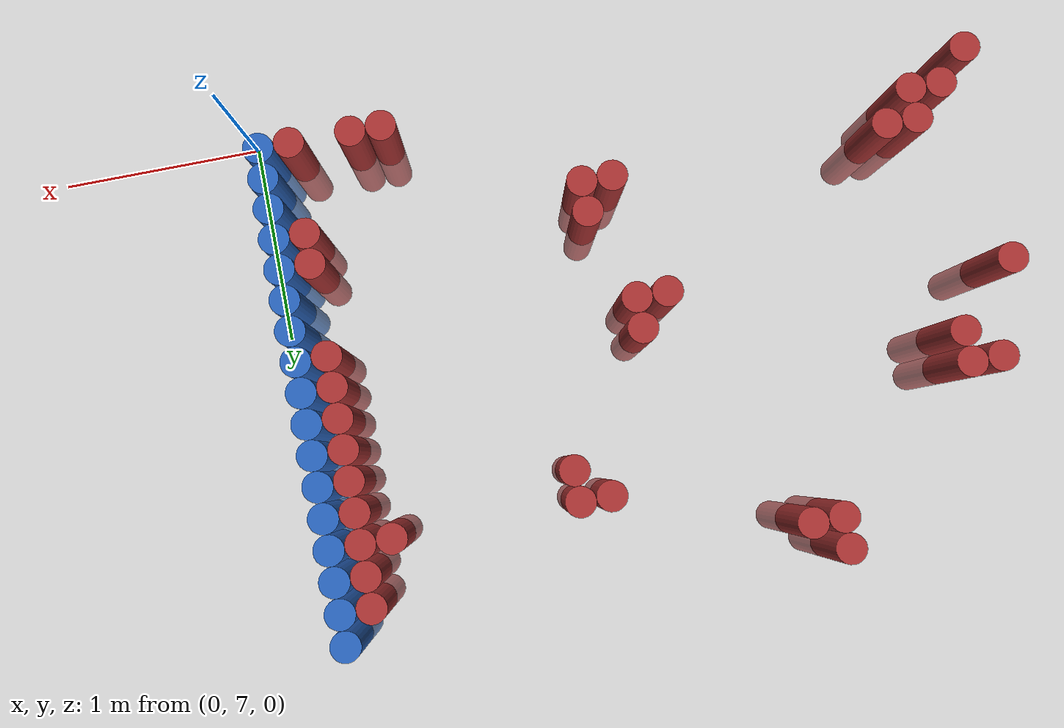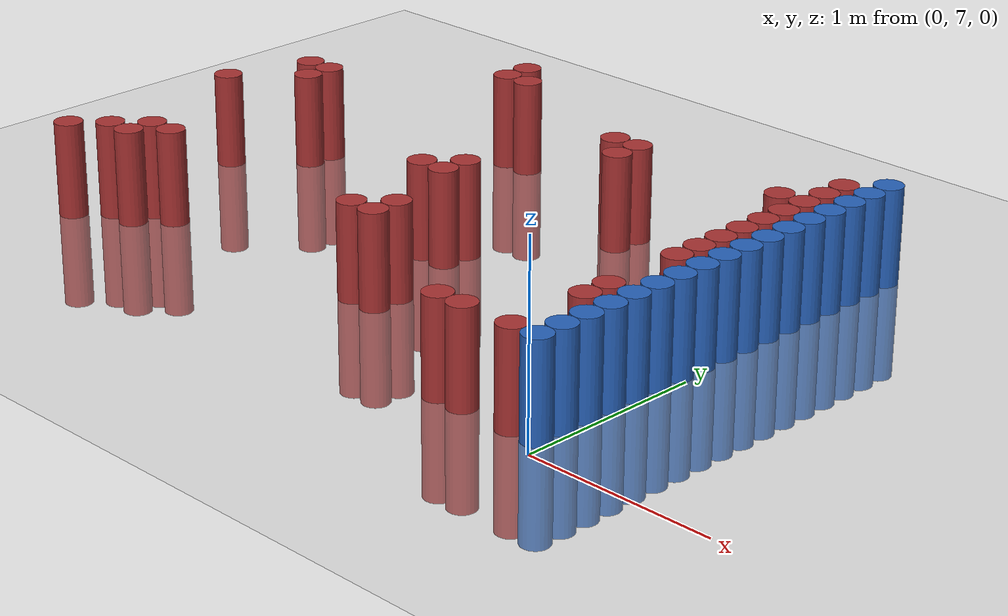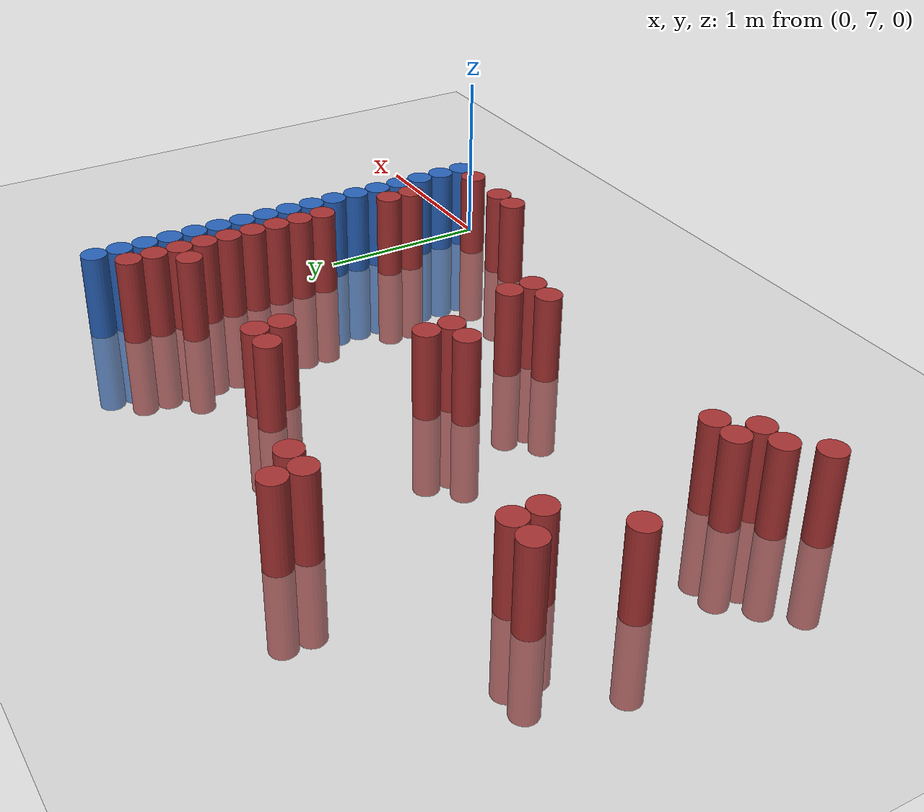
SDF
<sdf version="1.6">
 <world name="default">
  <model name="ground_plane">
   <static>1</static>
   <link name="link">
    <collision name="collision">
     <geometry><plane><normal>0 0 1</normal><size>100 100</size></plane></geometry>
     <surface><friction><ode><mu>100</mu><mu2>50</mu2></ode></friction></surface>
    </collision>
    <visual name="visual">
     <cast_shadows>0</cast_shadows>
     <geometry><plane><normal>0 0 1</normal><size>100 100</size></plane></geometry>
     <material>
      <script><uri>file://media/materials/scripts/gazebo.material</uri><name>Gazebo/Grey</name></script>
     </material>
    </visual>
   </link>
  </model>
  <model name="unit_cylinder_152">
   <static>1</static>
   <pose>-3.525000 7.275000 0.000000 0.000000 0.000000 0.000000</pose>
   <link name="link">
    <inertial>
     <mass>1</mass>
     <inertia><ixx>0.145833</ixx><ixy>0</ixy><ixz>0</ixz><iyy>0.145833</iyy><iyz>0</iyz><izz>0.125</izz></inertia>
    </inertial>
    <collision name="collision">
     <geometry><cylinder><radius>0.075000</radius><length>1</length></cylinder></geometry>
    </collision>
    <visual name="visual">
     <geometry><cylinder><radius>0.075000</radius><length>1</length></cylinder></geometry>
     <material>
      <ambient>0.648000 0.192000 0.192000 1</ambient>
      <diffuse>0.648000 0.192000 0.192000 1</diffuse>
     </material>
     <material>
      <script><name>Gazebo/Grey</name><uri>file://media/materials/scripts/gazebo.material</uri></script>
     </material>
    </visual>
   </link>
  </model>
  <model name="unit_cylinder_153">
   <static>1</static>
   <pose>-3.525000 8.325000 0.000000 0.000000 0.000000 0.000000</pose>
   <link name="link">
    <inertial>
     <mass>1</mass>
     <inertia><ixx>0.145833</ixx><ixy>0</ixy><ixz>0</ixz><iyy>0.145833</iyy><iyz>0</iyz><izz>0.125</izz></inertia>
    </inertial>
    <collision name="collision">
     <geometry><cylinder><radius>0.075000</radius><length>1</length></cylinder></geometry>
    </collision>
    <visual name="visual">
     <geometry><cylinder><radius>0.075000</radius><length>1</length></cylinder></geometry>
     <material>
      <ambient>0.648000 0.192000 0.192000 1</ambient>
      <diffuse>0.648000 0.192000 0.192000 1</diffuse>
     </material>
     <material>
      <script><name>Gazebo/Grey</name><uri>file://media/materials/scripts/gazebo.material</uri></script>
     </material>
    </visual>
   </link>
  </model>
  <model name="unit_cylinder_157">
   <static>1</static>
   <pose>-3.375000 7.425000 0.000000 0.000000 0.000000 0.000000</pose>
   <link name="link">
    <inertial>
     <mass>1</mass>
     <inertia><ixx>0.145833</ixx><ixy>0</ixy><ixz>0</ixz><iyy>0.145833</iyy><iyz>0</iyz><izz>0.125</izz></inertia>
    </inertial>
    <collision name="collision">
     <geometry><cylinder><radius>0.075000</radius><length>1</length></cylinder></geometry>
    </collision>
    <visual name="visual">
     <geometry><cylinder><radius>0.075000</radius><length>1</length></cylinder></geometry>
     <material>
      <ambient>0.648000 0.192000 0.192000 1</ambient>
      <diffuse>0.648000 0.192000 0.192000 1</diffuse>
     </material>
     <material>
      <script><name>Gazebo/Grey</name><uri>file://media/materials/scripts/gazebo.material</uri></script>
     </material>
    </visual>
   </link>
  </model>
  <model name="unit_cylinder_158">
   <static>1</static>
   <pose>-3.375000 8.775000 0.000000 0.000000 0.000000 0.000000</pose>
   <link name="link">
    <inertial>
     <mass>1</mass>
     <inertia><ixx>0.145833</ixx><ixy>0</ixy><ixz>0</ixz><iyy>0.145833</iyy><iyz>0</iyz><izz>0.125</izz></inertia>
    </inertial>
    <collision name="collision">
     <geometry><cylinder><radius>0.075000</radius><length>1</length></cylinder></geometry>
    </collision>
    <visual name="visual">
     <geometry><cylinder><radius>0.075000</radius><length>1</length></cylinder></geometry>
     <material>
      <ambient>0.648000 0.192000 0.192000 1</ambient>
      <diffuse>0.648000 0.192000 0.192000 1</diffuse>
     </material>
     <material>
      <script><name>Gazebo/Grey</name><uri>file://media/materials/scripts/gazebo.material</uri></script>
     </material>
    </visual>
   </link>
  </model>
  <model name="unit_cylinder_161">
   <static>1</static>
   <pose>-3.225000 7.425000 0.000000 0.000000 0.000000 0.000000</pose>
   <link name="link">
    <inertial>
     <mass>1</mass>
     <inertia><ixx>0.145833</ixx><ixy>0</ixy><ixz>0</ixz><iyy>0.145833</iyy><iyz>0</iyz><izz>0.125</izz></inertia>
    </inertial>
    <collision name="collision">
     <geometry><cylinder><radius>0.075000</radius><length>1</length></cylinder></geometry>
    </collision>
    <visual name="visual">
     <geometry><cylinder><radius>0.075000</radius><length>1</length></cylinder></geometry>
     <material>
      <ambient>0.648000 0.192000 0.192000 1</ambient>
      <diffuse>0.648000 0.192000 0.192000 1</diffuse>
     </material>
     <material>
      <script><name>Gazebo/Grey</name><uri>file://media/materials/scripts/gazebo.material</uri></script>
     </material>
    </visual>
   </link>
  </model>
  <model name="unit_cylinder_162">
   <static>1</static>
   <pose>-3.225000 7.575000 0.000000 0.000000 0.000000 0.000000</pose>
   <link name="link">
    <inertial>
     <mass>1</mass>
     <inertia><ixx>0.145833</ixx><ixy>0</ixy><ixz>0</ixz><iyy>0.145833</iyy><iyz>0</iyz><izz>0.125</izz></inertia>
    </inertial>
    <collision name="collision">
     <geometry><cylinder><radius>0.075000</radius><length>1</length></cylinder></geometry>
    </collision>
    <visual name="visual">
     <geometry><cylinder><radius>0.075000</radius><length>1</length></cylinder></geometry>
     <material>
      <ambient>0.648000 0.192000 0.192000 1</ambient>
      <diffuse>0.648000 0.192000 0.192000 1</diffuse>
     </material>
     <material>
      <script><name>Gazebo/Grey</name><uri>file://media/materials/scripts/gazebo.material</uri></script>
     </material>
    </visual>
   </link>
  </model>
  <model name="unit_cylinder_163">
   <static>1</static>
   <pose>-3.225000 8.625000 0.000000 0.000000 0.000000 0.000000</pose>
   <link name="link">
    <inertial>
     <mass>1</mass>
     <inertia><ixx>0.145833</ixx><ixy>0</ixy><ixz>0</ixz><iyy>0.145833</iyy><iyz>0</iyz><izz>0.125</izz></inertia>
    </inertial>
    <collision name="collision">
     <geometry><cylinder><radius>0.075000</radius><length>1</length></cylinder></geometry>
    </collision>
    <visual name="visual">
     <geometry><cylinder><radius>0.075000</radius><length>1</length></cylinder></geometry>
     <material>
      <ambient>0.648000 0.192000 0.192000 1</ambient>
      <diffuse>0.648000 0.192000 0.192000 1</diffuse>
     </material>
     <material>
      <script><name>Gazebo/Grey</name><uri>file://media/materials/scripts/gazebo.material</uri></script>
     </material>
    </visual>
   </link>
  </model>
  <model name="unit_cylinder_164">
   <static>1</static>
   <pose>-3.225000 8.775000 0.000000 0.000000 0.000000 0.000000</pose>
   <link name="link">
    <inertial>
     <mass>1</mass>
     <inertia><ixx>0.145833</ixx><ixy>0</ixy><ixz>0</ixz><iyy>0.145833</iyy><iyz>0</iyz><izz>0.125</izz></inertia>
    </inertial>
    <collision name="collision">
     <geometry><cylinder><radius>0.075000</radius><length>1</length></cylinder></geometry>
    </collision>
    <visual name="visual">
     <geometry><cylinder><radius>0.075000</radius><length>1</length></cylinder></geometry>
     <material>
      <ambient>0.648000 0.192000 0.192000 1</ambient>
      <diffuse>0.648000 0.192000 0.192000 1</diffuse>
     </material>
     <material>
      <script><name>Gazebo/Grey</name><uri>file://media/materials/scripts/gazebo.material</uri></script>
     </material>
    </visual>
   </link>
  </model>
  <model name="unit_cylinder_169">
   <static>1</static>
   <pose>-3.075000 7.575000 0.000000 0.000000 0.000000 0.000000</pose>
   <link name="link">
    <inertial>
     <mass>1</mass>
     <inertia><ixx>0.145833</ixx><ixy>0</ixy><ixz>0</ixz><iyy>0.145833</iyy><iyz>0</iyz><izz>0.125</izz></inertia>
    </inertial>
    <collision name="collision">
     <geometry><cylinder><radius>0.075000</radius><length>1</length></cylinder></geometry>
    </collision>
    <visual name="visual">
     <geometry><cylinder><radius>0.075000</radius><length>1</length></cylinder></geometry>
     <material>
      <ambient>0.648000 0.192000 0.192000 1</ambient>
      <diffuse>0.648000 0.192000 0.192000 1</diffuse>
     </material>
     <material>
      <script><name>Gazebo/Grey</name><uri>file://media/materials/scripts/gazebo.material</uri></script>
     </material>
    </visual>
   </link>
  </model>
  <model name="unit_cylinder_173">
   <static>1</static>
   <pose>-2.475000 9.375000 0.000000 0.000000 0.000000 0.000000</pose>
   <link name="link">
    <inertial>
     <mass>1</mass>
     <inertia><ixx>0.145833</ixx><ixy>0</ixy><ixz>0</ixz><iyy>0.145833</iyy><iyz>0</iyz><izz>0.125</izz></inertia>
    </inertial>
    <collision name="collision">
     <geometry><cylinder><radius>0.075000</radius><length>1</length></cylinder></geometry>
    </collision>
    <visual name="visual">
     <geometry><cylinder><radius>0.075000</radius><length>1</length></cylinder></geometry>
     <material>
      <ambient>0.648000 0.192000 0.192000 1</ambient>
      <diffuse>0.648000 0.192000 0.192000 1</diffuse>
     </material>
     <material>
      <script><name>Gazebo/Grey</name><uri>file://media/materials/scripts/gazebo.material</uri></script>
     </material>
    </visual>
   </link>
  </model>
  <model name="unit_cylinder_174">
   <static>1</static>
   <pose>-2.475000 9.525000 0.000000 0.000000 0.000000 0.000000</pose>
   <link name="link">
    <inertial>
     <mass>1</mass>
     <inertia><ixx>0.145833</ixx><ixy>0</ixy><ixz>0</ixz><iyy>0.145833</iyy><iyz>0</iyz><izz>0.125</izz></inertia>
    </inertial>
    <collision name="collision">
     <geometry><cylinder><radius>0.075000</radius><length>1</length></cylinder></geometry>
    </collision>
    <visual name="visual">
     <geometry><cylinder><radius>0.075000</radius><length>1</length></cylinder></geometry>
     <material>
      <ambient>0.648000 0.192000 0.192000 1</ambient>
      <diffuse>0.648000 0.192000 0.192000 1</diffuse>
     </material>
     <material>
      <script><name>Gazebo/Grey</name><uri>file://media/materials/scripts/gazebo.material</uri></script>
     </material>
    </visual>
   </link>
  </model>
  <model name="unit_cylinder_176">
   <static>1</static>
   <pose>-2.325000 9.375000 0.000000 0.000000 0.000000 0.000000</pose>
   <link name="link">
    <inertial>
     <mass>1</mass>
     <inertia><ixx>0.145833</ixx><ixy>0</ixy><ixz>0</ixz><iyy>0.145833</iyy><iyz>0</iyz><izz>0.125</izz></inertia>
    </inertial>
    <collision name="collision">
     <geometry><cylinder><radius>0.075000</radius><length>1</length></cylinder></geometry>
    </collision>
    <visual name="visual">
     <geometry><cylinder><radius>0.075000</radius><length>1</length></cylinder></geometry>
     <material>
      <ambient>0.648000 0.192000 0.192000 1</ambient>
      <diffuse>0.648000 0.192000 0.192000 1</diffuse>
     </material>
     <material>
      <script><name>Gazebo/Grey</name><uri>file://media/materials/scripts/gazebo.material</uri></script>
     </material>
    </visual>
   </link>
  </model>
  <model name="unit_cylinder_177">
   <static>1</static>
   <pose>-1.875000 8.175000 0.000000 0.000000 0.000000 0.000000</pose>
   <link name="link">
    <inertial>
     <mass>1</mass>
     <inertia><ixx>0.145833</ixx><ixy>0</ixy><ixz>0</ixz><iyy>0.145833</iyy><iyz>0</iyz><izz>0.125</izz></inertia>
    </inertial>
    <collision name="collision">
     <geometry><cylinder><radius>0.075000</radius><length>1</length></cylinder></geometry>
    </collision>
    <visual name="visual">
     <geometry><cylinder><radius>0.075000</radius><length>1</length></cylinder></geometry>
     <material>
      <ambient>0.648000 0.192000 0.192000 1</ambient>
      <diffuse>0.648000 0.192000 0.192000 1</diffuse>
     </material>
     <material>
      <script><name>Gazebo/Grey</name><uri>file://media/materials/scripts/gazebo.material</uri></script>
     </material>
    </visual>
   </link>
  </model>
  <model name="unit_cylinder_180">
   <static>1</static>
   <pose>-1.725000 7.575000 0.000000 0.000000 0.000000 0.000000</pose>
   <link name="link">
    <inertial>
     <mass>1</mass>
     <inertia><ixx>0.145833</ixx><ixy>0</ixy><ixz>0</ixz><iyy>0.145833</iyy><iyz>0</iyz><izz>0.125</izz></inertia>
    </inertial>
    <collision name="collision">
     <geometry><cylinder><radius>0.075000</radius><length>1</length></cylinder></geometry>
    </collision>
    <visual name="visual">
     <geometry><cylinder><radius>0.075000</radius><length>1</length></cylinder></geometry>
     <material>
      <ambient>0.648000 0.192000 0.192000 1</ambient>
      <diffuse>0.648000 0.192000 0.192000 1</diffuse>
     </material>
     <material>
      <script><name>Gazebo/Grey</name><uri>file://media/materials/scripts/gazebo.material</uri></script>
     </material>
    </visual>
   </link>
  </model>
  <model name="unit_cylinder_181">
   <static>1</static>
   <pose>-1.725000 8.175000 0.000000 0.000000 0.000000 0.000000</pose>
   <link name="link">
    <inertial>
     <mass>1</mass>
     <inertia><ixx>0.145833</ixx><ixy>0</ixy><ixz>0</ixz><iyy>0.145833</iyy><iyz>0</iyz><izz>0.125</izz></inertia>
    </inertial>
    <collision name="collision">
     <geometry><cylinder><radius>0.075000</radius><length>1</length></cylinder></geometry>
    </collision>
    <visual name="visual">
     <geometry><cylinder><radius>0.075000</radius><length>1</length></cylinder></geometry>
     <material>
      <ambient>0.648000 0.192000 0.192000 1</ambient>
      <diffuse>0.648000 0.192000 0.192000 1</diffuse>
     </material>
     <material>
      <script><name>Gazebo/Grey</name><uri>file://media/materials/scripts/gazebo.material</uri></script>
     </material>
    </visual>
   </link>
  </model>
  <model name="unit_cylinder_182">
   <static>1</static>
   <pose>-1.725000 8.325000 0.000000 0.000000 0.000000 0.000000</pose>
   <link name="link">
    <inertial>
     <mass>1</mass>
     <inertia><ixx>0.145833</ixx><ixy>0</ixy><ixz>0</ixz><iyy>0.145833</iyy><iyz>0</iyz><izz>0.125</izz></inertia>
    </inertial>
    <collision name="collision">
     <geometry><cylinder><radius>0.075000</radius><length>1</length></cylinder></geometry>
    </collision>
    <visual name="visual">
     <geometry><cylinder><radius>0.075000</radius><length>1</length></cylinder></geometry>
     <material>
      <ambient>0.648000 0.192000 0.192000 1</ambient>
      <diffuse>0.648000 0.192000 0.192000 1</diffuse>
     </material>
     <material>
      <script><name>Gazebo/Grey</name><uri>file://media/materials/scripts/gazebo.material</uri></script>
     </material>
    </visual>
   </link>
  </model>
  <model name="unit_cylinder_190">
   <static>1</static>
   <pose>-1.575000 7.575000 0.000000 0.000000 0.000000 0.000000</pose>
   <link name="link">
    <inertial>
     <mass>1</mass>
     <inertia><ixx>0.145833</ixx><ixy>0</ixy><ixz>0</ixz><iyy>0.145833</iyy><iyz>0</iyz><izz>0.125</izz></inertia>
    </inertial>
    <collision name="collision">
     <geometry><cylinder><radius>0.075000</radius><length>1</length></cylinder></geometry>
    </collision>
    <visual name="visual">
     <geometry><cylinder><radius>0.075000</radius><length>1</length></cylinder></geometry>
     <material>
      <ambient>0.648000 0.192000 0.192000 1</ambient>
      <diffuse>0.648000 0.192000 0.192000 1</diffuse>
     </material>
     <material>
      <script><name>Gazebo/Grey</name><uri>file://media/materials/scripts/gazebo.material</uri></script>
     </material>
    </visual>
   </link>
  </model>
  <model name="unit_cylinder_191">
   <static>1</static>
   <pose>-1.575000 7.725000 0.000000 0.000000 0.000000 0.000000</pose>
   <link name="link">
    <inertial>
     <mass>1</mass>
     <inertia><ixx>0.145833</ixx><ixy>0</ixy><ixz>0</ixz><iyy>0.145833</iyy><iyz>0</iyz><izz>0.125</izz></inertia>
    </inertial>
    <collision name="collision">
     <geometry><cylinder><radius>0.075000</radius><length>1</length></cylinder></geometry>
    </collision>
    <visual name="visual">
     <geometry><cylinder><radius>0.075000</radius><length>1</length></cylinder></geometry>
     <material>
      <ambient>0.648000 0.192000 0.192000 1</ambient>
      <diffuse>0.648000 0.192000 0.192000 1</diffuse>
     </material>
     <material>
      <script><name>Gazebo/Grey</name><uri>file://media/materials/scripts/gazebo.material</uri></script>
     </material>
    </visual>
   </link>
  </model>
  <model name="unit_cylinder_198">
   <static>1</static>
   <pose>-1.425000 9.075000 0.000000 0.000000 0.000000 0.000000</pose>
   <link name="link">
    <inertial>
     <mass>1</mass>
     <inertia><ixx>0.145833</ixx><ixy>0</ixy><ixz>0</ixz><iyy>0.145833</iyy><iyz>0</iyz><izz>0.125</izz></inertia>
    </inertial>
    <collision name="collision">
     <geometry><cylinder><radius>0.075000</radius><length>1</length></cylinder></geometry>
    </collision>
    <visual name="visual">
     <geometry><cylinder><radius>0.075000</radius><length>1</length></cylinder></geometry>
     <material>
      <ambient>0.648000 0.192000 0.192000 1</ambient>
      <diffuse>0.648000 0.192000 0.192000 1</diffuse>
     </material>
     <material>
      <script><name>Gazebo/Grey</name><uri>file://media/materials/scripts/gazebo.material</uri></script>
     </material>
    </visual>
   </link>
  </model>
  <model name="unit_cylinder_200">
   <static>1</static>
   <pose>-1.275000 8.925000 0.000000 0.000000 0.000000 0.000000</pose>
   <link name="link">
    <inertial>
     <mass>1</mass>
     <inertia><ixx>0.145833</ixx><ixy>0</ixy><ixz>0</ixz><iyy>0.145833</iyy><iyz>0</iyz><izz>0.125</izz></inertia>
    </inertial>
    <collision name="collision">
     <geometry><cylinder><radius>0.075000</radius><length>1</length></cylinder></geometry>
    </collision>
    <visual name="visual">
     <geometry><cylinder><radius>0.075000</radius><length>1</length></cylinder></geometry>
     <material>
      <ambient>0.648000 0.192000 0.192000 1</ambient>
      <diffuse>0.648000 0.192000 0.192000 1</diffuse>
     </material>
     <material>
      <script><name>Gazebo/Grey</name><uri>file://media/materials/scripts/gazebo.material</uri></script>
     </material>
    </visual>
   </link>
  </model>
  <model name="unit_cylinder_201">
   <static>1</static>
   <pose>-1.275000 9.075000 0.000000 0.000000 0.000000 0.000000</pose>
   <link name="link">
    <inertial>
     <mass>1</mass>
     <inertia><ixx>0.145833</ixx><ixy>0</ixy><ixz>0</ixz><iyy>0.145833</iyy><iyz>0</iyz><izz>0.125</izz></inertia>
    </inertial>
    <collision name="collision">
     <geometry><cylinder><radius>0.075000</radius><length>1</length></cylinder></geometry>
    </collision>
    <visual name="visual">
     <geometry><cylinder><radius>0.075000</radius><length>1</length></cylinder></geometry>
     <material>
      <ambient>0.648000 0.192000 0.192000 1</ambient>
      <diffuse>0.648000 0.192000 0.192000 1</diffuse>
     </material>
     <material>
      <script><name>Gazebo/Grey</name><uri>file://media/materials/scripts/gazebo.material</uri></script>
     </material>
    </visual>
   </link>
  </model>
  <model name="unit_cylinder_202">
   <static>1</static>
   <pose>-0.675000 7.125000 0.000000 0.000000 0.000000 0.000000</pose>
   <link name="link">
    <inertial>
     <mass>1</mass>
     <inertia><ixx>0.145833</ixx><ixy>0</ixy><ixz>0</ixz><iyy>0.145833</iyy><iyz>0</iyz><izz>0.125</izz></inertia>
    </inertial>
    <collision name="collision">
     <geometry><cylinder><radius>0.075000</radius><length>1</length></cylinder></geometry>
    </collision>
    <visual name="visual">
     <geometry><cylinder><radius>0.075000</radius><length>1</length></cylinder></geometry>
     <material>
      <ambient>0.648000 0.192000 0.192000 1</ambient>
      <diffuse>0.648000 0.192000 0.192000 1</diffuse>
     </material>
     <material>
      <script><name>Gazebo/Grey</name><uri>file://media/materials/scripts/gazebo.material</uri></script>
     </material>
    </visual>
   </link>
  </model>
  <model name="unit_cylinder_204">
   <static>1</static>
   <pose>-0.525000 7.125000 0.000000 0.000000 0.000000 0.000000</pose>
   <link name="link">
    <inertial>
     <mass>1</mass>
     <inertia><ixx>0.145833</ixx><ixy>0</ixy><ixz>0</ixz><iyy>0.145833</iyy><iyz>0</iyz><izz>0.125</izz></inertia>
    </inertial>
    <collision name="collision">
     <geometry><cylinder><radius>0.075000</radius><length>1</length></cylinder></geometry>
    </collision>
    <visual name="visual">
     <geometry><cylinder><radius>0.075000</radius><length>1</length></cylinder></geometry>
     <material>
      <ambient>0.648000 0.192000 0.192000 1</ambient>
      <diffuse>0.648000 0.192000 0.192000 1</diffuse>
     </material>
     <material>
      <script><name>Gazebo/Grey</name><uri>file://media/materials/scripts/gazebo.material</uri></script>
     </material>
    </visual>
   </link>
  </model>
  <model name="unit_cylinder_209">
   <static>1</static>
   <pose>-0.375000 9.075000 0.000000 0.000000 0.000000 0.000000</pose>
   <link name="link">
    <inertial>
     <mass>1</mass>
     <inertia><ixx>0.145833</ixx><ixy>0</ixy><ixz>0</ixz><iyy>0.145833</iyy><iyz>0</iyz><izz>0.125</izz></inertia>
    </inertial>
    <collision name="collision">
     <geometry><cylinder><radius>0.075000</radius><length>1</length></cylinder></geometry>
    </collision>
    <visual name="visual">
     <geometry><cylinder><radius>0.075000</radius><length>1</length></cylinder></geometry>
     <material>
      <ambient>0.648000 0.192000 0.192000 1</ambient>
      <diffuse>0.648000 0.192000 0.192000 1</diffuse>
     </material>
     <material>
      <script><name>Gazebo/Grey</name><uri>file://media/materials/scripts/gazebo.material</uri></script>
     </material>
    </visual>
   </link>
  </model>
  <model name="unit_cylinder_220">
   <static>1</static>
   <pose>-0.225000 7.125000 0.000000 0.000000 0.000000 0.000000</pose>
   <link name="link">
    <inertial>
     <mass>1</mass>
     <inertia><ixx>0.145833</ixx><ixy>0</ixy><ixz>0</ixz><iyy>0.145833</iyy><iyz>0</iyz><izz>0.125</izz></inertia>
    </inertial>
    <collision name="collision">
     <geometry><cylinder><radius>0.075000</radius><length>1</length></cylinder></geometry>
    </collision>
    <visual name="visual">
     <geometry><cylinder><radius>0.075000</radius><length>1</length></cylinder></geometry>
     <material>
      <ambient>0.648000 0.192000 0.192000 1</ambient>
      <diffuse>0.648000 0.192000 0.192000 1</diffuse>
     </material>
     <material>
      <script><name>Gazebo/Grey</name><uri>file://media/materials/scripts/gazebo.material</uri></script>
     </material>
    </visual>
   </link>
  </model>
  <model name="unit_cylinder_221">
   <static>1</static>
   <pose>-0.225000 7.575000 0.000000 0.000000 0.000000 0.000000</pose>
   <link name="link">
    <inertial>
     <mass>1</mass>
     <inertia><ixx>0.145833</ixx><ixy>0</ixy><ixz>0</ixz><iyy>0.145833</iyy><iyz>0</iyz><izz>0.125</izz></inertia>
    </inertial>
    <collision name="collision">
     <geometry><cylinder><radius>0.075000</radius><length>1</length></cylinder></geometry>
    </collision>
    <visual name="visual">
     <geometry><cylinder><radius>0.075000</radius><length>1</length></cylinder></geometry>
     <material>
      <ambient>0.648000 0.192000 0.192000 1</ambient>
      <diffuse>0.648000 0.192000 0.192000 1</diffuse>
     </material>
     <material>
      <script><name>Gazebo/Grey</name><uri>file://media/materials/scripts/gazebo.material</uri></script>
     </material>
    </visual>
   </link>
  </model>
  <model name="unit_cylinder_222">
   <static>1</static>
   <pose>-0.225000 7.725000 0.000000 0.000000 0.000000 0.000000</pose>
   <link name="link">
    <inertial>
     <mass>1</mass>
     <inertia><ixx>0.145833</ixx><ixy>0</ixy><ixz>0</ixz><iyy>0.145833</iyy><iyz>0</iyz><izz>0.125</izz></inertia>
    </inertial>
    <collision name="collision">
     <geometry><cylinder><radius>0.075000</radius><length>1</length></cylinder></geometry>
    </collision>
    <visual name="visual">
     <geometry><cylinder><radius>0.075000</radius><length>1</length></cylinder></geometry>
     <material>
      <ambient>0.648000 0.192000 0.192000 1</ambient>
      <diffuse>0.648000 0.192000 0.192000 1</diffuse>
     </material>
     <material>
      <script><name>Gazebo/Grey</name><uri>file://media/materials/scripts/gazebo.material</uri></script>
     </material>
    </visual>
   </link>
  </model>
  <model name="unit_cylinder_223">
   <static>1</static>
   <pose>-0.225000 8.175000 0.000000 0.000000 0.000000 0.000000</pose>
   <link name="link">
    <inertial>
     <mass>1</mass>
     <inertia><ixx>0.145833</ixx><ixy>0</ixy><ixz>0</ixz><iyy>0.145833</iyy><iyz>0</iyz><izz>0.125</izz></inertia>
    </inertial>
    <collision name="collision">
     <geometry><cylinder><radius>0.075000</radius><length>1</length></cylinder></geometry>
    </collision>
    <visual name="visual">
     <geometry><cylinder><radius>0.075000</radius><length>1</length></cylinder></geometry>
     <material>
      <ambient>0.648000 0.192000 0.192000 1</ambient>
      <diffuse>0.648000 0.192000 0.192000 1</diffuse>
     </material>
     <material>
      <script><name>Gazebo/Grey</name><uri>file://media/materials/scripts/gazebo.material</uri></script>
     </material>
    </visual>
   </link>
  </model>
  <model name="unit_cylinder_224">
   <static>1</static>
   <pose>-0.225000 8.325000 0.000000 0.000000 0.000000 0.000000</pose>
   <link name="link">
    <inertial>
     <mass>1</mass>
     <inertia><ixx>0.145833</ixx><ixy>0</ixy><ixz>0</ixz><iyy>0.145833</iyy><iyz>0</iyz><izz>0.125</izz></inertia>
    </inertial>
    <collision name="collision">
     <geometry><cylinder><radius>0.075000</radius><length>1</length></cylinder></geometry>
    </collision>
    <visual name="visual">
     <geometry><cylinder><radius>0.075000</radius><length>1</length></cylinder></geometry>
     <material>
      <ambient>0.648000 0.192000 0.192000 1</ambient>
      <diffuse>0.648000 0.192000 0.192000 1</diffuse>
     </material>
     <material>
      <script><name>Gazebo/Grey</name><uri>file://media/materials/scripts/gazebo.material</uri></script>
     </material>
    </visual>
   </link>
  </model>
  <model name="unit_cylinder_225">
   <static>1</static>
   <pose>-0.225000 8.475000 0.000000 0.000000 0.000000 0.000000</pose>
   <link name="link">
    <inertial>
     <mass>1</mass>
     <inertia><ixx>0.145833</ixx><ixy>0</ixy><ixz>0</ixz><iyy>0.145833</iyy><iyz>0</iyz><izz>0.125</izz></inertia>
    </inertial>
    <collision name="collision">
     <geometry><cylinder><radius>0.075000</radius><length>1</length></cylinder></geometry>
    </collision>
    <visual name="visual">
     <geometry><cylinder><radius>0.075000</radius><length>1</length></cylinder></geometry>
     <material>
      <ambient>0.648000 0.192000 0.192000 1</ambient>
      <diffuse>0.648000 0.192000 0.192000 1</diffuse>
     </material>
     <material>
      <script><name>Gazebo/Grey</name><uri>file://media/materials/scripts/gazebo.material</uri></script>
     </material>
    </visual>
   </link>
  </model>
  <model name="unit_cylinder_226">
   <static>1</static>
   <pose>-0.225000 8.625000 0.000000 0.000000 0.000000 0.000000</pose>
   <link name="link">
    <inertial>
     <mass>1</mass>
     <inertia><ixx>0.145833</ixx><ixy>0</ixy><ixz>0</ixz><iyy>0.145833</iyy><iyz>0</iyz><izz>0.125</izz></inertia>
    </inertial>
    <collision name="collision">
     <geometry><cylinder><radius>0.075000</radius><length>1</length></cylinder></geometry>
    </collision>
    <visual name="visual">
     <geometry><cylinder><radius>0.075000</radius><length>1</length></cylinder></geometry>
     <material>
      <ambient>0.648000 0.192000 0.192000 1</ambient>
      <diffuse>0.648000 0.192000 0.192000 1</diffuse>
     </material>
     <material>
      <script><name>Gazebo/Grey</name><uri>file://media/materials/scripts/gazebo.material</uri></script>
     </material>
    </visual>
   </link>
  </model>
  <model name="unit_cylinder_227">
   <static>1</static>
   <pose>-0.225000 8.775000 0.000000 0.000000 0.000000 0.000000</pose>
   <link name="link">
    <inertial>
     <mass>1</mass>
     <inertia><ixx>0.145833</ixx><ixy>0</ixy><ixz>0</ixz><iyy>0.145833</iyy><iyz>0</iyz><izz>0.125</izz></inertia>
    </inertial>
    <collision name="collision">
     <geometry><cylinder><radius>0.075000</radius><length>1</length></cylinder></geometry>
    </collision>
    <visual name="visual">
     <geometry><cylinder><radius>0.075000</radius><length>1</length></cylinder></geometry>
     <material>
      <ambient>0.648000 0.192000 0.192000 1</ambient>
      <diffuse>0.648000 0.192000 0.192000 1</diffuse>
     </material>
     <material>
      <script><name>Gazebo/Grey</name><uri>file://media/materials/scripts/gazebo.material</uri></script>
     </material>
    </visual>
   </link>
  </model>
  <model name="unit_cylinder_228">
   <static>1</static>
   <pose>-0.225000 8.925000 0.000000 0.000000 0.000000 0.000000</pose>
   <link name="link">
    <inertial>
     <mass>1</mass>
     <inertia><ixx>0.145833</ixx><ixy>0</ixy><ixz>0</ixz><iyy>0.145833</iyy><iyz>0</iyz><izz>0.125</izz></inertia>
    </inertial>
    <collision name="collision">
     <geometry><cylinder><radius>0.075000</radius><length>1</length></cylinder></geometry>
    </collision>
    <visual name="visual">
     <geometry><cylinder><radius>0.075000</radius><length>1</length></cylinder></geometry>
     <material>
      <ambient>0.648000 0.192000 0.192000 1</ambient>
      <diffuse>0.648000 0.192000 0.192000 1</diffuse>
     </material>
     <material>
      <script><name>Gazebo/Grey</name><uri>file://media/materials/scripts/gazebo.material</uri></script>
     </material>
    </visual>
   </link>
  </model>
  <model name="unit_cylinder_229">
   <static>1</static>
   <pose>-0.225000 9.075000 0.000000 0.000000 0.000000 0.000000</pose>
   <link name="link">
    <inertial>
     <mass>1</mass>
     <inertia><ixx>0.145833</ixx><ixy>0</ixy><ixz>0</ixz><iyy>0.145833</iyy><iyz>0</iyz><izz>0.125</izz></inertia>
    </inertial>
    <collision name="collision">
     <geometry><cylinder><radius>0.075000</radius><length>1</length></cylinder></geometry>
    </collision>
    <visual name="visual">
     <geometry><cylinder><radius>0.075000</radius><length>1</length></cylinder></geometry>
     <material>
      <ambient>0.648000 0.192000 0.192000 1</ambient>
      <diffuse>0.648000 0.192000 0.192000 1</diffuse>
     </material>
     <material>
      <script><name>Gazebo/Grey</name><uri>file://media/materials/scripts/gazebo.material</uri></script>
     </material>
    </visual>
   </link>
  </model>
  <model name="unit_cylinder_230">
   <static>1</static>
   <pose>-0.225000 9.225000 0.000000 0.000000 0.000000 0.000000</pose>
   <link name="link">
    <inertial>
     <mass>1</mass>
     <inertia><ixx>0.145833</ixx><ixy>0</ixy><ixz>0</ixz><iyy>0.145833</iyy><iyz>0</iyz><izz>0.125</izz></inertia>
    </inertial>
    <collision name="collision">
     <geometry><cylinder><radius>0.075000</radius><length>1</length></cylinder></geometry>
    </collision>
    <visual name="visual">
     <geometry><cylinder><radius>0.075000</radius><length>1</length></cylinder></geometry>
     <material>
      <ambient>0.648000 0.192000 0.192000 1</ambient>
      <diffuse>0.648000 0.192000 0.192000 1</diffuse>
     </material>
     <material>
      <script><name>Gazebo/Grey</name><uri>file://media/materials/scripts/gazebo.material</uri></script>
     </material>
    </visual>
   </link>
  </model>
  <model name="unit_cylinder_231">
   <static>1</static>
   <pose>-0.225000 9.375000 0.000000 0.000000 0.000000 0.000000</pose>
   <link name="link">
    <inertial>
     <mass>1</mass>
     <inertia><ixx>0.145833</ixx><ixy>0</ixy><ixz>0</ixz><iyy>0.145833</iyy><iyz>0</iyz><izz>0.125</izz></inertia>
    </inertial>
    <collision name="collision">
     <geometry><cylinder><radius>0.075000</radius><length>1</length></cylinder></geometry>
    </collision>
    <visual name="visual">
     <geometry><cylinder><radius>0.075000</radius><length>1</length></cylinder></geometry>
     <material>
      <ambient>0.648000 0.192000 0.192000 1</ambient>
      <diffuse>0.648000 0.192000 0.192000 1</diffuse>
     </material>
     <material>
      <script><name>Gazebo/Grey</name><uri>file://media/materials/scripts/gazebo.material</uri></script>
     </material>
    </visual>
   </link>
  </model>
  <model name="unit_cylinder_245">
   <static>1</static>
   <pose>-0.075000 7.125000 0.000000 0.000000 0.000000 0.000000</pose>
   <link name="link">
    <inertial>
     <mass>1</mass>
     <inertia><ixx>0.145833</ixx><ixy>0</ixy><ixz>0</ixz><iyy>0.145833</iyy><iyz>0</iyz><izz>0.125</izz></inertia>
    </inertial>
    <collision name="collision">
     <geometry><cylinder><radius>0.075000</radius><length>1</length></cylinder></geometry>
    </collision>
    <visual name="visual">
     <geometry><cylinder><radius>0.075000</radius><length>1</length></cylinder></geometry>
     <material>
      <ambient>0.152000 0.379000 0.720000 1</ambient>
      <diffuse>0.152000 0.379000 0.720000 1</diffuse>
     </material>
     <material>
      <script><name>Gazebo/Grey</name><uri>file://media/materials/scripts/gazebo.material</uri></script>
     </material>
    </visual>
   </link>
  </model>
  <model name="unit_cylinder_246">
   <static>1</static>
   <pose>-0.075000 7.275000 0.000000 0.000000 0.000000 0.000000</pose>
   <link name="link">
    <inertial>
     <mass>1</mass>
     <inertia><ixx>0.145833</ixx><ixy>0</ixy><ixz>0</ixz><iyy>0.145833</iyy><iyz>0</iyz><izz>0.125</izz></inertia>
    </inertial>
    <collision name="collision">
     <geometry><cylinder><radius>0.075000</radius><length>1</length></cylinder></geometry>
    </collision>
    <visual name="visual">
     <geometry><cylinder><radius>0.075000</radius><length>1</length></cylinder></geometry>
     <material>
      <ambient>0.152000 0.379000 0.720000 1</ambient>
      <diffuse>0.152000 0.379000 0.720000 1</diffuse>
     </material>
     <material>
      <script><name>Gazebo/Grey</name><uri>file://media/materials/scripts/gazebo.material</uri></script>
     </material>
    </visual>
   </link>
  </model>
  <model name="unit_cylinder_247">
   <static>1</static>
   <pose>-0.075000 7.425000 0.000000 0.000000 0.000000 0.000000</pose>
   <link name="link">
    <inertial>
     <mass>1</mass>
     <inertia><ixx>0.145833</ixx><ixy>0</ixy><ixz>0</ixz><iyy>0.145833</iyy><iyz>0</iyz><izz>0.125</izz></inertia>
    </inertial>
    <collision name="collision">
     <geometry><cylinder><radius>0.075000</radius><length>1</length></cylinder></geometry>
    </collision>
    <visual name="visual">
     <geometry><cylinder><radius>0.075000</radius><length>1</length></cylinder></geometry>
     <material>
      <ambient>0.152000 0.379000 0.720000 1</ambient>
      <diffuse>0.152000 0.379000 0.720000 1</diffuse>
     </material>
     <material>
      <script><name>Gazebo/Grey</name><uri>file://media/materials/scripts/gazebo.material</uri></script>
     </material>
    </visual>
   </link>
  </model>
  <model name="unit_cylinder_248">
   <static>1</static>
   <pose>-0.075000 7.575000 0.000000 0.000000 0.000000 0.000000</pose>
   <link name="link">
    <inertial>
     <mass>1</mass>
     <inertia><ixx>0.145833</ixx><ixy>0</ixy><ixz>0</ixz><iyy>0.145833</iyy><iyz>0</iyz><izz>0.125</izz></inertia>
    </inertial>
    <collision name="collision">
     <geometry><cylinder><radius>0.075000</radius><length>1</length></cylinder></geometry>
    </collision>
    <visual name="visual">
     <geometry><cylinder><radius>0.075000</radius><length>1</length></cylinder></geometry>
     <material>
      <ambient>0.152000 0.379000 0.720000 1</ambient>
      <diffuse>0.152000 0.379000 0.720000 1</diffuse>
     </material>
     <material>
      <script><name>Gazebo/Grey</name><uri>file://media/materials/scripts/gazebo.material</uri></script>
     </material>
    </visual>
   </link>
  </model>
  <model name="unit_cylinder_249">
   <static>1</static>
   <pose>-0.075000 7.725000 0.000000 0.000000 0.000000 0.000000</pose>
   <link name="link">
    <inertial>
     <mass>1</mass>
     <inertia><ixx>0.145833</ixx><ixy>0</ixy><ixz>0</ixz><iyy>0.145833</iyy><iyz>0</iyz><izz>0.125</izz></inertia>
    </inertial>
    <collision name="collision">
     <geometry><cylinder><radius>0.075000</radius><length>1</length></cylinder></geometry>
    </collision>
    <visual name="visual">
     <geometry><cylinder><radius>0.075000</radius><length>1</length></cylinder></geometry>
     <material>
      <ambient>0.152000 0.379000 0.720000 1</ambient>
      <diffuse>0.152000 0.379000 0.720000 1</diffuse>
     </material>
     <material>
      <script><name>Gazebo/Grey</name><uri>file://media/materials/scripts/gazebo.material</uri></script>
     </material>
    </visual>
   </link>
  </model>
  <model name="unit_cylinder_250">
   <static>1</static>
   <pose>-0.075000 7.875000 0.000000 0.000000 0.000000 0.000000</pose>
   <link name="link">
    <inertial>
     <mass>1</mass>
     <inertia><ixx>0.145833</ixx><ixy>0</ixy><ixz>0</ixz><iyy>0.145833</iyy><iyz>0</iyz><izz>0.125</izz></inertia>
    </inertial>
    <collision name="collision">
     <geometry><cylinder><radius>0.075000</radius><length>1</length></cylinder></geometry>
    </collision>
    <visual name="visual">
     <geometry><cylinder><radius>0.075000</radius><length>1</length></cylinder></geometry>
     <material>
      <ambient>0.152000 0.379000 0.720000 1</ambient>
      <diffuse>0.152000 0.379000 0.720000 1</diffuse>
     </material>
     <material>
      <script><name>Gazebo/Grey</name><uri>file://media/materials/scripts/gazebo.material</uri></script>
     </material>
    </visual>
   </link>
  </model>
  <model name="unit_cylinder_251">
   <static>1</static>
   <pose>-0.075000 8.025000 0.000000 0.000000 0.000000 0.000000</pose>
   <link name="link">
    <inertial>
     <mass>1</mass>
     <inertia><ixx>0.145833</ixx><ixy>0</ixy><ixz>0</ixz><iyy>0.145833</iyy><iyz>0</iyz><izz>0.125</izz></inertia>
    </inertial>
    <collision name="collision">
     <geometry><cylinder><radius>0.075000</radius><length>1</length></cylinder></geometry>
    </collision>
    <visual name="visual">
     <geometry><cylinder><radius>0.075000</radius><length>1</length></cylinder></geometry>
     <material>
      <ambient>0.152000 0.379000 0.720000 1</ambient>
      <diffuse>0.152000 0.379000 0.720000 1</diffuse>
     </material>
     <material>
      <script><name>Gazebo/Grey</name><uri>file://media/materials/scripts/gazebo.material</uri></script>
     </material>
    </visual>
   </link>
  </model>
  <model name="unit_cylinder_252">
   <static>1</static>
   <pose>-0.075000 8.175000 0.000000 0.000000 0.000000 0.000000</pose>
   <link name="link">
    <inertial>
     <mass>1</mass>
     <inertia><ixx>0.145833</ixx><ixy>0</ixy><ixz>0</ixz><iyy>0.145833</iyy><iyz>0</iyz><izz>0.125</izz></inertia>
    </inertial>
    <collision name="collision">
     <geometry><cylinder><radius>0.075000</radius><length>1</length></cylinder></geometry>
    </collision>
    <visual name="visual">
     <geometry><cylinder><radius>0.075000</radius><length>1</length></cylinder></geometry>
     <material>
      <ambient>0.152000 0.379000 0.720000 1</ambient>
      <diffuse>0.152000 0.379000 0.720000 1</diffuse>
     </material>
     <material>
      <script><name>Gazebo/Grey</name><uri>file://media/materials/scripts/gazebo.material</uri></script>
     </material>
    </visual>
   </link>
  </model>
  <model name="unit_cylinder_253">
   <static>1</static>
   <pose>-0.075000 8.325000 0.000000 0.000000 0.000000 0.000000</pose>
   <link name="link">
    <inertial>
     <mass>1</mass>
     <inertia><ixx>0.145833</ixx><ixy>0</ixy><ixz>0</ixz><iyy>0.145833</iyy><iyz>0</iyz><izz>0.125</izz></inertia>
    </inertial>
    <collision name="collision">
     <geometry><cylinder><radius>0.075000</radius><length>1</length></cylinder></geometry>
    </collision>
    <visual name="visual">
     <geometry><cylinder><radius>0.075000</radius><length>1</length></cylinder></geometry>
     <material>
      <ambient>0.152000 0.379000 0.720000 1</ambient>
      <diffuse>0.152000 0.379000 0.720000 1</diffuse>
     </material>
     <material>
      <script><name>Gazebo/Grey</name><uri>file://media/materials/scripts/gazebo.material</uri></script>
     </material>
    </visual>
   </link>
  </model>
  <model name="unit_cylinder_254">
   <static>1</static>
   <pose>-0.075000 8.475000 0.000000 0.000000 0.000000 0.000000</pose>
   <link name="link">
    <inertial>
     <mass>1</mass>
     <inertia><ixx>0.145833</ixx><ixy>0</ixy><ixz>0</ixz><iyy>0.145833</iyy><iyz>0</iyz><izz>0.125</izz></inertia>
    </inertial>
    <collision name="collision">
     <geometry><cylinder><radius>0.075000</radius><length>1</length></cylinder></geometry>
    </collision>
    <visual name="visual">
     <geometry><cylinder><radius>0.075000</radius><length>1</length></cylinder></geometry>
     <material>
      <ambient>0.152000 0.379000 0.720000 1</ambient>
      <diffuse>0.152000 0.379000 0.720000 1</diffuse>
     </material>
     <material>
      <script><name>Gazebo/Grey</name><uri>file://media/materials/scripts/gazebo.material</uri></script>
     </material>
    </visual>
   </link>
  </model>
  <model name="unit_cylinder_255">
   <static>1</static>
   <pose>-0.075000 8.625000 0.000000 0.000000 0.000000 0.000000</pose>
   <link name="link">
    <inertial>
     <mass>1</mass>
     <inertia><ixx>0.145833</ixx><ixy>0</ixy><ixz>0</ixz><iyy>0.145833</iyy><iyz>0</iyz><izz>0.125</izz></inertia>
    </inertial>
    <collision name="collision">
     <geometry><cylinder><radius>0.075000</radius><length>1</length></cylinder></geometry>
    </collision>
    <visual name="visual">
     <geometry><cylinder><radius>0.075000</radius><length>1</length></cylinder></geometry>
     <material>
      <ambient>0.152000 0.379000 0.720000 1</ambient>
      <diffuse>0.152000 0.379000 0.720000 1</diffuse>
     </material>
     <material>
      <script><name>Gazebo/Grey</name><uri>file://media/materials/scripts/gazebo.material</uri></script>
     </material>
    </visual>
   </link>
  </model>
  <model name="unit_cylinder_256">
   <static>1</static>
   <pose>-0.075000 8.775000 0.000000 0.000000 0.000000 0.000000</pose>
   <link name="link">
    <inertial>
     <mass>1</mass>
     <inertia><ixx>0.145833</ixx><ixy>0</ixy><ixz>0</ixz><iyy>0.145833</iyy><iyz>0</iyz><izz>0.125</izz></inertia>
    </inertial>
    <collision name="collision">
     <geometry><cylinder><radius>0.075000</radius><length>1</length></cylinder></geometry>
    </collision>
    <visual name="visual">
     <geometry><cylinder><radius>0.075000</radius><length>1</length></cylinder></geometry>
     <material>
      <ambient>0.152000 0.379000 0.720000 1</ambient>
      <diffuse>0.152000 0.379000 0.720000 1</diffuse>
     </material>
     <material>
      <script><name>Gazebo/Grey</name><uri>file://media/materials/scripts/gazebo.material</uri></script>
     </material>
    </visual>
   </link>
  </model>
  <model name="unit_cylinder_257">
   <static>1</static>
   <pose>-0.075000 8.925000 0.000000 0.000000 0.000000 0.000000</pose>
   <link name="link">
    <inertial>
     <mass>1</mass>
     <inertia><ixx>0.145833</ixx><ixy>0</ixy><ixz>0</ixz><iyy>0.145833</iyy><iyz>0</iyz><izz>0.125</izz></inertia>
    </inertial>
    <collision name="collision">
     <geometry><cylinder><radius>0.075000</radius><length>1</length></cylinder></geometry>
    </collision>
    <visual name="visual">
     <geometry><cylinder><radius>0.075000</radius><length>1</length></cylinder></geometry>
     <material>
      <ambient>0.152000 0.379000 0.720000 1</ambient>
      <diffuse>0.152000 0.379000 0.720000 1</diffuse>
     </material>
     <material>
      <script><name>Gazebo/Grey</name><uri>file://media/materials/scripts/gazebo.material</uri></script>
     </material>
    </visual>
   </link>
  </model>
  <model name="unit_cylinder_258">
   <static>1</static>
   <pose>-0.075000 9.075000 0.000000 0.000000 0.000000 0.000000</pose>
   <link name="link">
    <inertial>
     <mass>1</mass>
     <inertia><ixx>0.145833</ixx><ixy>0</ixy><ixz>0</ixz><iyy>0.145833</iyy><iyz>0</iyz><izz>0.125</izz></inertia>
    </inertial>
    <collision name="collision">
     <geometry><cylinder><radius>0.075000</radius><length>1</length></cylinder></geometry>
    </collision>
    <visual name="visual">
     <geometry><cylinder><radius>0.075000</radius><length>1</length></cylinder></geometry>
     <material>
      <ambient>0.152000 0.379000 0.720000 1</ambient>
      <diffuse>0.152000 0.379000 0.720000 1</diffuse>
     </material>
     <material>
      <script><name>Gazebo/Grey</name><uri>file://media/materials/scripts/gazebo.material</uri></script>
     </material>
    </visual>
   </link>
  </model>
  <model name="unit_cylinder_259">
   <static>1</static>
   <pose>-0.075000 9.225000 0.000000 0.000000 0.000000 0.000000</pose>
   <link name="link">
    <inertial>
     <mass>1</mass>
     <inertia><ixx>0.145833</ixx><ixy>0</ixy><ixz>0</ixz><iyy>0.145833</iyy><iyz>0</iyz><izz>0.125</izz></inertia>
    </inertial>
    <collision name="collision">
     <geometry><cylinder><radius>0.075000</radius><length>1</length></cylinder></geometry>
    </collision>
    <visual name="visual">
     <geometry><cylinder><radius>0.075000</radius><length>1</length></cylinder></geometry>
     <material>
      <ambient>0.152000 0.379000 0.720000 1</ambient>
      <diffuse>0.152000 0.379000 0.720000 1</diffuse>
     </material>
     <material>
      <script><name>Gazebo/Grey</name><uri>file://media/materials/scripts/gazebo.material</uri></script>
     </material>
    </visual>
   </link>
  </model>
  <model name="unit_cylinder_260">
   <static>1</static>
   <pose>-0.075000 9.375000 0.000000 0.000000 0.000000 0.000000</pose>
   <link name="link">
    <inertial>
     <mass>1</mass>
     <inertia><ixx>0.145833</ixx><ixy>0</ixy><ixz>0</ixz><iyy>0.145833</iyy><iyz>0</iyz><izz>0.125</izz></inertia>
    </inertial>
    <collision name="collision">
     <geometry><cylinder><radius>0.075000</radius><length>1</length></cylinder></geometry>
    </collision>
    <visual name="visual">
     <geometry><cylinder><radius>0.075000</radius><length>1</length></cylinder></geometry>
     <material>
      <ambient>0.152000 0.379000 0.720000 1</ambient>
      <diffuse>0.152000 0.379000 0.720000 1</diffuse>
     </material>
     <material>
      <script><name>Gazebo/Grey</name><uri>file://media/materials/scripts/gazebo.material</uri></script>
     </material>
    </visual>
   </link>
  </model>
  <model name="unit_cylinder_261">
   <static>1</static>
   <pose>-0.075000 9.525000 0.000000 0.000000 0.000000 0.000000</pose>
   <link name="link">
    <inertial>
     <mass>1</mass>
     <inertia><ixx>0.145833</ixx><ixy>0</ixy><ixz>0</ixz><iyy>0.145833</iyy><iyz>0</iyz><izz>0.125</izz></inertia>
    </inertial>
    <collision name="collision">
     <geometry><cylinder><radius>0.075000</radius><length>1</length></cylinder></geometry>
    </collision>
    <visual name="visual">
     <geometry><cylinder><radius>0.075000</radius><length>1</length></cylinder></geometry>
     <material>
      <ambient>0.152000 0.379000 0.720000 1</ambient>
      <diffuse>0.152000 0.379000 0.720000 1</diffuse>
     </material>
     <material>
      <script><name>Gazebo/Grey</name><uri>file://media/materials/scripts/gazebo.material</uri></script>
     </material>
    </visual>
   </link>
  </model>
 </world>
</sdf>
